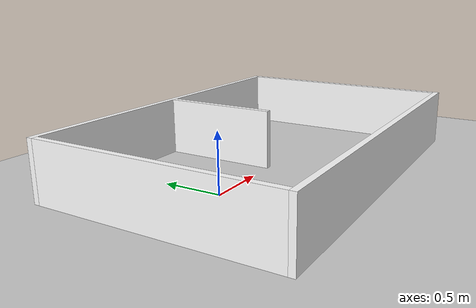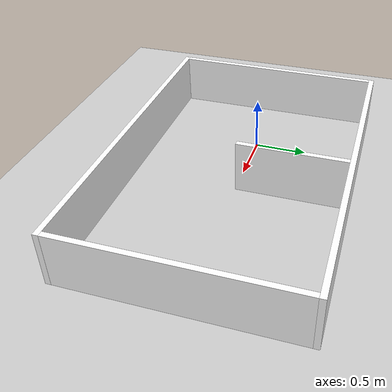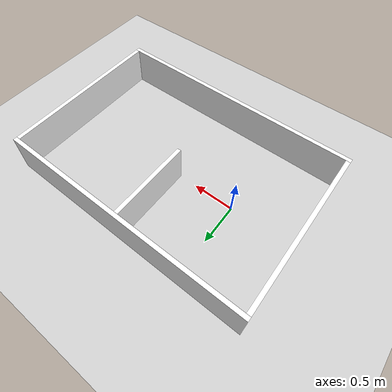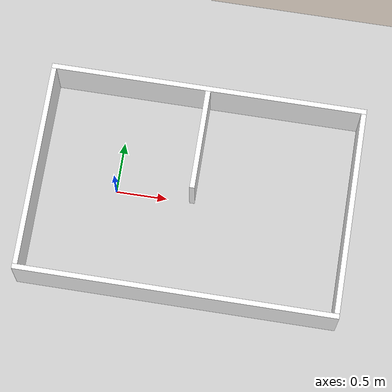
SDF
<?xml version="1.0" ?>
<sdf version="1.9">
  <world name="small">

    <plugin filename="gz-sim-physics-system" name="gz::sim::systems::Physics"/>
    <plugin filename="gz-sim-user-commands-system" name="gz::sim::systems::UserCommands"/>
    <plugin filename="gz-sim-scene-broadcaster-system" name="gz::sim::systems::SceneBroadcaster"/>
    <plugin filename="gz-sim-imu-system" name="gz::sim::systems::Imu"/>

    <plugin filename="gz-sim-sensors-system" name="gz::sim::systems::Sensors">
      <render_engine>ogre2</render_engine>
    </plugin>

    <physics type="ode">
      <max_step_size>0.005</max_step_size>
      <real_time_update_rate>200</real_time_update_rate>
    </physics>

    <light type="directional" name="sun">
      <cast_shadows>false</cast_shadows>
      <pose>0 0 10 0 0 0</pose>
      <diffuse>0.8 0.8 0.8 1</diffuse>
      <specular>0.2 0.2 0.2 1</specular>
      <direction>-0.5 0.1 -0.9</direction>
    </light>

    <model name="ground_plane">
      <static>true</static>
      <link name="link">
        <collision name="collision">
          <geometry><plane><normal>0 0 1</normal><size>10 10</size></plane></geometry>
        </collision>
        <visual name="visual">
          <geometry><plane><normal>0 0 1</normal><size>10 10</size></plane></geometry>
          <material>
            <ambient>0.8 0.8 0.8 1</ambient>
            <diffuse>0.8 0.8 0.8 1</diffuse>
          </material>
        </visual>
      </link>
    </model>

    <model name="wall_north">
      <static>true</static>
      <pose>0.75 1.025 0.25 0 0 0</pose>
      <link name="link">
        <collision name="collision"><geometry><box><size>3.1 0.05 0.5</size></box></geometry></collision>
        <visual name="visual">
          <geometry><box><size>3.1 0.05 0.5</size></box></geometry>
          <material><ambient>1 1 1 1</ambient><diffuse>1 1 1 1</diffuse></material>
        </visual>
      </link>
    </model>

    <model name="wall_south">
      <static>true</static>
      <pose>0.75 -1.025 0.25 0 0 0</pose>
      <link name="link">
        <collision name="collision"><geometry><box><size>3.1 0.05 0.5</size></box></geometry></collision>
        <visual name="visual">
          <geometry><box><size>3.1 0.05 0.5</size></box></geometry>
          <material><ambient>1 1 1 1</ambient><diffuse>1 1 1 1</diffuse></material>
        </visual>
      </link>
    </model>

    <model name="wall_west">
      <static>true</static>
      <pose>-0.775 0 0.25 0 0 0</pose>
      <link name="link">
        <collision name="collision"><geometry><box><size>0.05 2.0 0.5</size></box></geometry></collision>
        <visual name="visual">
          <geometry><box><size>0.05 2.0 0.5</size></box></geometry>
          <material><ambient>1 1 1 1</ambient><diffuse>1 1 1 1</diffuse></material>
        </visual>
      </link>
    </model>

    <model name="wall_east">
      <static>true</static>
      <pose>2.275 0 0.25 0 0 0</pose>
      <link name="link">
        <collision name="collision"><geometry><box><size>0.05 2.0 0.5</size></box></geometry></collision>
        <visual name="visual">
          <geometry><box><size>0.05 2.0 0.5</size></box></geometry>
          <material><ambient>1 1 1 1</ambient><diffuse>1 1 1 1</diffuse></material>
        </visual>
      </link>
    </model>

    <model name="inner_wall">
      <static>true</static>
      <pose>0.75 0.5 0.25 0 0 0</pose>
      <link name="link">
        <collision name="collision"><geometry><box><size>0.05 1.0 0.5</size></box></geometry></collision>
        <visual name="visual">
          <geometry><box><size>0.05 1.0 0.5</size></box></geometry>
          <material><ambient>1 1 1 1</ambient><diffuse>1 1 1 1</diffuse></material>
        </visual>
      </link>
    </model>

  </world>
</sdf>
